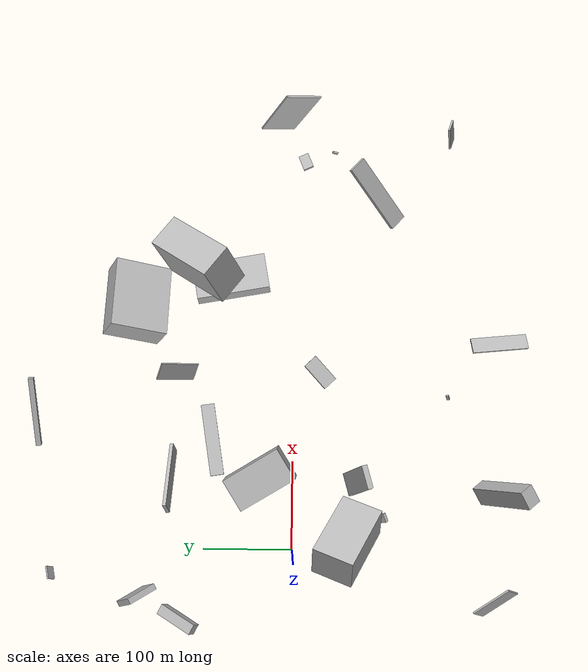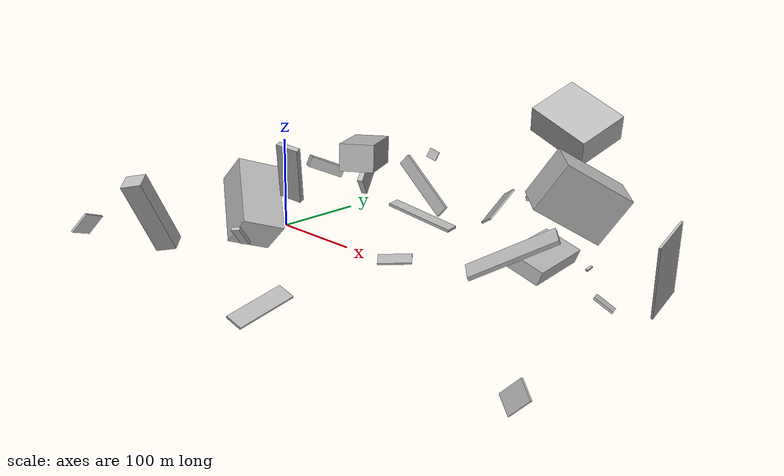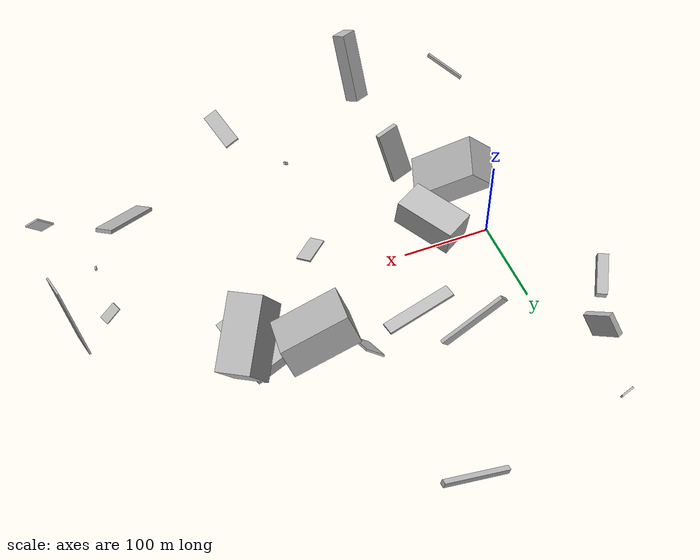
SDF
<sdf version="1.6">
 <world name="default">
  <scene>
   <sky><clouds><speed>12</speed></clouds></sky>
   <ambient>0.4 0.4 0.4 1</ambient>
   <background>0.7 0.7 0.7 1</background>
   <shadows>1</shadows>
  </scene>
  <gravity>0 0 -9.8066</gravity>
  <magnetic_field>6e-06 2.3e-05 -4.2e-05</magnetic_field>
  <physics default="0" name="default_physics" type="ode">
   <ode>
    <solver>
     <type>quick</type>
     <iters>10</iters>
     <sor>1.0</sor>
     <use_dynamic_moi_rescaling>0</use_dynamic_moi_rescaling>
    </solver>
    <constraints>
     <cfm>0</cfm>
     <erp>0.2</erp>
     <contact_max_correcting_vel>100</contact_max_correcting_vel>
     <contact_surface_layer>0.001</contact_surface_layer>
    </constraints>
   </ode>
   <max_step_size>0.004</max_step_size>
   <real_time_factor>1</real_time_factor>
   <real_time_update_rate>250</real_time_update_rate>
  </physics>
  <light name="sun" type="directional">
   <pose>0 0 10 0 0 0</pose>
   <diffuse>0.8 0.8 0.8 1</diffuse>
   <specular>0.2 0.2 0.2 1</specular>
   <attenuation>
    <range>1000</range>
    <constant>0.9</constant>
    <linear>0.01</linear>
    <quadratic>0.001</quadratic>
   </attenuation>
   <direction>-0.5 0.1 -0.9</direction>
  </light>
  <model name="building_1">
   <static>0</static>
   <pose>333.30783885964104 91.9536503814925 82.00787034269065 -1.2261596316342038 -0.9959221915326115 0.606522336915547</pose>
   <link name="link">
    <gravity>0</gravity>
    <pose>0 0 18.5 0 0 0</pose>
    <collision name="collision"><geometry><box><size>55 80 37</size></box></geometry></collision>
    <visual name="visual">
     <cast_shadows>0</cast_shadows>
     <geometry><box><size>55 80 37</size></box></geometry>
     <material>
      <script>
       <uri>model://HANNAS_wall/materials/scripts</uri>
       <uri>model://HANNAS_wall/materials/textures</uri>
       <name>vrc/HANNAS_wall</name>
      </script>
     </material>
    </visual>
   </link>
  </model>
  <model name="building_2">
   <static>0</static>
   <pose>31.63192198767498 -59.668046609191535 57.75698790592281 2.4211568274467306 -0.3168127817817095 -1.9028515342507297</pose>
   <link name="link">
    <gravity>0</gravity>
    <pose>0 0 20.5 0 0 0</pose>
    <collision name="collision"><geometry><box><size>47 80 41</size></box></geometry></collision>
    <visual name="visual">
     <cast_shadows>0</cast_shadows>
     <geometry><box><size>47 80 41</size></box></geometry>
     <material>
      <script>
       <uri>model://HANNAS_wall/materials/scripts</uri>
       <uri>model://HANNAS_wall/materials/textures</uri>
       <name>vrc/HANNAS_wall</name>
      </script>
     </material>
    </visual>
   </link>
  </model>
  <model name="building_3">
   <static>0</static>
   <pose>88.36043308329175 137.0064195638813 43.22214151550306 2.896304527926482 0.6559729343750247 -0.04486637672673112</pose>
   <link name="link">
    <gravity>0</gravity>
    <pose>0 0 7.5 0 0 0</pose>
    <collision name="collision"><geometry><box><size>80 4 15</size></box></geometry></collision>
    <visual name="visual">
     <cast_shadows>0</cast_shadows>
     <geometry><box><size>80 4 15</size></box></geometry>
     <material>
      <script>
       <uri>model://HANNAS_wall/materials/scripts</uri>
       <uri>model://HANNAS_wall/materials/textures</uri>
       <name>vrc/HANNAS_wall</name>
      </script>
     </material>
    </visual>
   </link>
  </model>
  <model name="building_4">
   <static>0</static>
   <pose>265.99173933513623 133.96742275249196 130.0100069837016 1.1754093691774334 -0.3535965126950436 3.1153849797690256</pose>
   <link name="link">
    <gravity>0</gravity>
    <pose>0 0 28.5 0 0 0</pose>
    <collision name="collision"><geometry><box><size>71 31 57</size></box></geometry></collision>
    <visual name="visual">
     <cast_shadows>0</cast_shadows>
     <geometry><box><size>71 31 57</size></box></geometry>
     <material>
      <script>
       <uri>model://HANNAS_wall/materials/scripts</uri>
       <uri>model://HANNAS_wall/materials/textures</uri>
       <name>vrc/HANNAS_wall</name>
      </script>
     </material>
    </visual>
   </link>
  </model>
  <model name="building_5">
   <static>0</static>
   <pose>206.82181958559113 -35.30486258682782 20.610866062278113 -1.3738932376409159 -0.05471446368190737 0.7362274765434383</pose>
   <link name="link">
    <gravity>0</gravity>
    <pose>0 0 8.5 0 0 0</pose>
    <collision name="collision"><geometry><box><size>34 2 17</size></box></geometry></collision>
    <visual name="visual">
     <cast_shadows>0</cast_shadows>
     <geometry><box><size>34 2 17</size></box></geometry>
     <material>
      <script>
       <uri>model://HANNAS_wall/materials/scripts</uri>
       <uri>model://HANNAS_wall/materials/textures</uri>
       <name>vrc/HANNAS_wall</name>
      </script>
     </material>
    </visual>
   </link>
  </model>
  <model name="building_6">
   <static>0</static>
   <pose>73.89453134895928 25.793061330151033 95.11519063223764 1.3357691526179116 -1.4692539488689964 2.3584687413093444</pose>
   <link name="link">
    <gravity>0</gravity>
    <pose>0 0 18.5 0 0 0</pose>
    <collision name="collision"><geometry><box><size>29 66 37</size></box></geometry></collision>
    <visual name="visual">
     <cast_shadows>0</cast_shadows>
     <geometry><box><size>29 66 37</size></box></geometry>
     <material>
      <script>
       <uri>model://HANNAS_wall/materials/scripts</uri>
       <uri>model://HANNAS_wall/materials/textures</uri>
       <name>vrc/HANNAS_wall</name>
      </script>
     </material>
    </visual>
   </link>
  </model>
  <model name="building_7">
   <static>0</static>
   <pose>-67.8892832225732 122.84886074194057 29.18298647292354 -1.590668379277792 0.39777426471259936 1.0949336961526315</pose>
   <link name="link">
    <gravity>0</gravity>
    <pose>0 0 6.0 0 0 0</pose>
    <collision name="collision"><geometry><box><size>45 13 12</size></box></geometry></collision>
    <visual name="visual">
     <cast_shadows>0</cast_shadows>
     <geometry><box><size>45 13 12</size></box></geometry>
     <material>
      <script>
       <uri>model://HANNAS_wall/materials/scripts</uri>
       <uri>model://HANNAS_wall/materials/textures</uri>
       <name>vrc/HANNAS_wall</name>
      </script>
     </material>
    </visual>
   </link>
  </model>
  <model name="building_8">
   <static>0</static>
   <pose>361.2968441069461 -107.4549067591549 75.62095675888995 1.0982879767053924 -0.2290980996244691 2.3885226241213773</pose>
   <link name="link">
    <gravity>0</gravity>
    <pose>0 0 40.0 0 0 0</pose>
    <collision name="collision"><geometry><box><size>19 4 80</size></box></geometry></collision>
    <visual name="visual">
     <cast_shadows>0</cast_shadows>
     <geometry><box><size>19 4 80</size></box></geometry>
     <material>
      <script>
       <uri>model://HANNAS_wall/materials/scripts</uri>
       <uri>model://HANNAS_wall/materials/textures</uri>
       <name>vrc/HANNAS_wall</name>
      </script>
     </material>
    </visual>
   </link>
  </model>
  <model name="building_9">
   <static>0</static>
   <pose>44.2606049028903 -93.30204756130895 21.042216476157886 -1.7550024991781144 0.8970991621529495 1.795371005409343</pose>
   <link name="link">
    <gravity>0</gravity>
    <pose>0 0 5.0 0 0 0</pose>
    <collision name="collision"><geometry><box><size>26 4 10</size></box></geometry></collision>
    <visual name="visual">
     <cast_shadows>0</cast_shadows>
     <geometry><box><size>26 4 10</size></box></geometry>
     <material>
      <script>
       <uri>model://HANNAS_wall/materials/scripts</uri>
       <uri>model://HANNAS_wall/materials/textures</uri>
       <name>vrc/HANNAS_wall</name>
      </script>
     </material>
    </visual>
   </link>
  </model>
  <model name="building_10">
   <static>0</static>
   <pose>475.0246209715453 7.267789283844252 79.93307463211164 -2.0047903264680897 -1.169773087169573 -1.0077130092502142</pose>
   <link name="link">
    <gravity>0</gravity>
    <pose>0 0 1.0 0 0 0</pose>
    <collision name="collision"><geometry><box><size>80 38 2</size></box></geometry></collision>
    <visual name="visual">
     <cast_shadows>0</cast_shadows>
     <geometry><box><size>80 38 2</size></box></geometry>
     <material>
      <script>
       <uri>model://HANNAS_wall/materials/scripts</uri>
       <uri>model://HANNAS_wall/materials/textures</uri>
       <name>vrc/HANNAS_wall</name>
      </script>
     </material>
    </visual>
   </link>
  </model>
  <model name="building_11">
   <static>0</static>
   <pose>306.4893755897466 70.80505891453747 35.37261756262685 2.7857481122358454 -0.006523319506735279 -1.395321206608588</pose>
   <link name="link">
    <gravity>0</gravity>
    <pose>0 0 7.5 0 0 0</pose>
    <collision name="collision"><geometry><box><size>80 41 15</size></box></geometry></collision>
    <visual name="visual">
     <cast_shadows>0</cast_shadows>
     <geometry><box><size>80 41 15</size></box></geometry>
     <material>
      <script>
       <uri>model://HANNAS_wall/materials/scripts</uri>
       <uri>model://HANNAS_wall/materials/textures</uri>
       <name>vrc/HANNAS_wall</name>
      </script>
     </material>
    </visual>
   </link>
  </model>
  <model name="building_12">
   <static>0</static>
   <pose>432.7020511785757 -40.22172307184938 82.64275415891296 -2.14088722655927 -1.1444194568932682 -1.1182708080583377</pose>
   <link name="link">
    <gravity>0</gravity>
    <pose>0 0 1.0 0 0 0</pose>
    <collision name="collision"><geometry><box><size>2 6 2</size></box></geometry></collision>
    <visual name="visual">
     <cast_shadows>0</cast_shadows>
     <geometry><box><size>2 6 2</size></box></geometry>
     <material>
      <script>
       <uri>model://HANNAS_wall/materials/scripts</uri>
       <uri>model://HANNAS_wall/materials/textures</uri>
       <name>vrc/HANNAS_wall</name>
      </script>
     </material>
    </visual>
   </link>
  </model>
  <model name="building_13">
   <static>0</static>
   <pose>124.01320176153439 97.40149685087147 21.53026868183152 -1.6128944902970197 -0.18388441623536994 -2.9830398978324433</pose>
   <link name="link">
    <gravity>0</gravity>
    <pose>0 0 7.5 0 0 0</pose>
    <collision name="collision"><geometry><box><size>80 3 15</size></box></geometry></collision>
    <visual name="visual">
     <cast_shadows>0</cast_shadows>
     <geometry><box><size>80 3 15</size></box></geometry>
     <material>
      <script>
       <uri>model://HANNAS_wall/materials/scripts</uri>
       <uri>model://HANNAS_wall/materials/textures</uri>
       <name>vrc/HANNAS_wall</name>
      </script>
     </material>
    </visual>
   </link>
  </model>
  <model name="building_14">
   <static>0</static>
   <pose>199.86099847298453 127.23436317398793 42.596028392263904 2.5121587157405885 -0.565702206006119 1.5841181066002783</pose>
   <link name="link">
    <gravity>0</gravity>
    <pose>0 0 1.0 0 0 0</pose>
    <collision name="collision"><geometry><box><size>45 21 2</size></box></geometry></collision>
    <visual name="visual">
     <cast_shadows>0</cast_shadows>
     <geometry><box><size>45 21 2</size></box></geometry>
     <material>
      <script>
       <uri>model://HANNAS_wall/materials/scripts</uri>
       <uri>model://HANNAS_wall/materials/textures</uri>
       <name>vrc/HANNAS_wall</name>
      </script>
     </material>
    </visual>
   </link>
  </model>
  <model name="building_15">
   <static>0</static>
   <pose>235.30264961699675 -224.78763018133066 40.51162565330228 -2.993140520259353 0.39576565679085396 0.1522584702078313</pose>
   <link name="link">
    <gravity>0</gravity>
    <pose>0 0 1.0 0 0 0</pose>
    <collision name="collision"><geometry><box><size>17 63 2</size></box></geometry></collision>
    <visual name="visual">
     <cast_shadows>0</cast_shadows>
     <geometry><box><size>17 63 2</size></box></geometry>
     <material>
      <script>
       <uri>model://HANNAS_wall/materials/scripts</uri>
       <uri>model://HANNAS_wall/materials/textures</uri>
       <name>vrc/HANNAS_wall</name>
      </script>
     </material>
    </visual>
   </link>
  </model>
  <model name="building_16">
   <static>0</static>
   <pose>-25.036883728676724 265.2016963967826 21.7839013911609 0.3744986641095606 -0.30633159110785124 -2.9281327711926153</pose>
   <link name="link">
    <gravity>0</gravity>
    <pose>0 0 6.0 0 0 0</pose>
    <collision name="collision"><geometry><box><size>14 2 12</size></box></geometry></collision>
    <visual name="visual">
     <cast_shadows>0</cast_shadows>
     <geometry><box><size>14 2 12</size></box></geometry>
     <material>
      <script>
       <uri>model://HANNAS_wall/materials/scripts</uri>
       <uri>model://HANNAS_wall/materials/textures</uri>
       <name>vrc/HANNAS_wall</name>
      </script>
     </material>
    </visual>
   </link>
  </model>
  <model name="building_17">
   <static>0</static>
   <pose>69.63830121836736 -218.2829471776988 86.4693789555661 2.0027309908264552 -0.21854685360912754 0.5209033065973325</pose>
   <link name="link">
    <gravity>0</gravity>
    <pose>0 0 8.0 0 0 0</pose>
    <collision name="collision"><geometry><box><size>21 80 16</size></box></geometry></collision>
    <visual name="visual">
     <cast_shadows>0</cast_shadows>
     <geometry><box><size>21 80 16</size></box></geometry>
     <material>
      <script>
       <uri>model://HANNAS_wall/materials/scripts</uri>
       <uri>model://HANNAS_wall/materials/textures</uri>
       <name>vrc/HANNAS_wall</name>
      </script>
     </material>
    </visual>
   </link>
  </model>
  <model name="building_18">
   <static>0</static>
   <pose>191.43245590738587 292.6007583594346 21.930604170505056 1.8970778689575003 0.03174789356478907 -1.500622017657203</pose>
   <link name="link">
    <gravity>0</gravity>
    <pose>0 0 40.0 0 0 0</pose>
    <collision name="collision"><geometry><box><size>6 6 80</size></box></geometry></collision>
    <visual name="visual">
     <cast_shadows>0</cast_shadows>
     <geometry><box><size>6 6 80</size></box></geometry>
     <material>
      <script>
       <uri>model://HANNAS_wall/materials/scripts</uri>
       <uri>model://HANNAS_wall/materials/textures</uri>
       <name>vrc/HANNAS_wall</name>
      </script>
     </material>
    </visual>
   </link>
  </model>
  <model name="building_19">
   <static>0</static>
   <pose>-63.404104485747226 -205.83249285523834 32.78997893818919 0.9958749561474837 -0.8557670276177587 1.1418099340476908</pose>
   <link name="link">
    <gravity>0</gravity>
    <pose>0 0 24.0 0 0 0</pose>
    <collision name="collision"><geometry><box><size>23 2 48</size></box></geometry></collision>
    <visual name="visual">
     <cast_shadows>0</cast_shadows>
     <geometry><box><size>23 2 48</size></box></geometry>
     <material>
      <script>
       <uri>model://HANNAS_wall/materials/scripts</uri>
       <uri>model://HANNAS_wall/materials/textures</uri>
       <name>vrc/HANNAS_wall</name>
      </script>
     </material>
    </visual>
   </link>
  </model>
  <model name="building_20">
   <static>0</static>
   <pose>458.3666980122027 -173.31935684161698 16.23433629942865 0.39819842399677 -0.6675706474981362 2.7637600958777697</pose>
   <link name="link">
    <gravity>0</gravity>
    <pose>0 0 12.5 0 0 0</pose>
    <collision name="collision"><geometry><box><size>19 2 25</size></box></geometry></collision>
    <visual name="visual">
     <cast_shadows>0</cast_shadows>
     <geometry><box><size>19 2 25</size></box></geometry>
     <material>
      <script>
       <uri>model://HANNAS_wall/materials/scripts</uri>
       <uri>model://HANNAS_wall/materials/textures</uri>
       <name>vrc/HANNAS_wall</name>
      </script>
     </material>
    </visual>
   </link>
  </model>
  <model name="building_21">
   <static>0</static>
   <pose>87.3267082516957 -64.26213984906246 95.04144361838873 1.8696919466002055 0.14894912031551422 0.26931433457546405</pose>
   <link name="link">
    <gravity>0</gravity>
    <pose>0 0 3.0 0 0 0</pose>
    <collision name="collision"><geometry><box><size>25 63 6</size></box></geometry></collision>
    <visual name="visual">
     <cast_shadows>0</cast_shadows>
     <geometry><box><size>25 63 6</size></box></geometry>
     <material>
      <script>
       <uri>model://HANNAS_wall/materials/scripts</uri>
       <uri>model://HANNAS_wall/materials/textures</uri>
       <name>vrc/HANNAS_wall</name>
      </script>
     </material>
    </visual>
   </link>
  </model>
  <model name="building_22">
   <static>0</static>
   <pose>177.09315944984323 -172.48289095336906 10.395604436753771 -2.553337428696251 -0.5728236655405852 2.728151596637218</pose>
   <link name="link">
    <gravity>0</gravity>
    <pose>0 0 3.5 0 0 0</pose>
    <collision name="collision"><geometry><box><size>2 3 7</size></box></geometry></collision>
    <visual name="visual">
     <cast_shadows>0</cast_shadows>
     <geometry><box><size>2 3 7</size></box></geometry>
     <material>
      <script>
       <uri>model://HANNAS_wall/materials/scripts</uri>
       <uri>model://HANNAS_wall/materials/textures</uri>
       <name>vrc/HANNAS_wall</name>
      </script>
     </material>
    </visual>
   </link>
  </model>
  <model name="building_23">
   <static>0</static>
   <pose>439.50247212250144 -7.619107705269809 36.555637651031724 1.0225234063409105 -0.09412432434303457 -1.174380948864283</pose>
   <link name="link">
    <gravity>0</gravity>
    <pose>0 0 10.0 0 0 0</pose>
    <collision name="collision"><geometry><box><size>11 2 20</size></box></geometry></collision>
    <visual name="visual">
     <cast_shadows>0</cast_shadows>
     <geometry><box><size>11 2 20</size></box></geometry>
     <material>
      <script>
       <uri>model://HANNAS_wall/materials/scripts</uri>
       <uri>model://HANNAS_wall/materials/textures</uri>
       <name>vrc/HANNAS_wall</name>
      </script>
     </material>
    </visual>
   </link>
  </model>
  <model name="building_24">
   <static>0</static>
   <pose>-47.10169728249396 165.9045658136281 22.945647337325944 -3.12323887979869 0.6596584757492765 -1.1091294889476995</pose>
   <link name="link">
    <gravity>0</gravity>
    <pose>0 0 13.5 0 0 0</pose>
    <collision name="collision"><geometry><box><size>37 7 27</size></box></geometry></collision>
    <visual name="visual">
     <cast_shadows>0</cast_shadows>
     <geometry><box><size>37 7 27</size></box></geometry>
     <material>
      <script>
       <uri>model://HANNAS_wall/materials/scripts</uri>
       <uri>model://HANNAS_wall/materials/textures</uri>
       <name>vrc/HANNAS_wall</name>
      </script>
     </material>
    </visual>
   </link>
  </model>
 </world>
</sdf>
